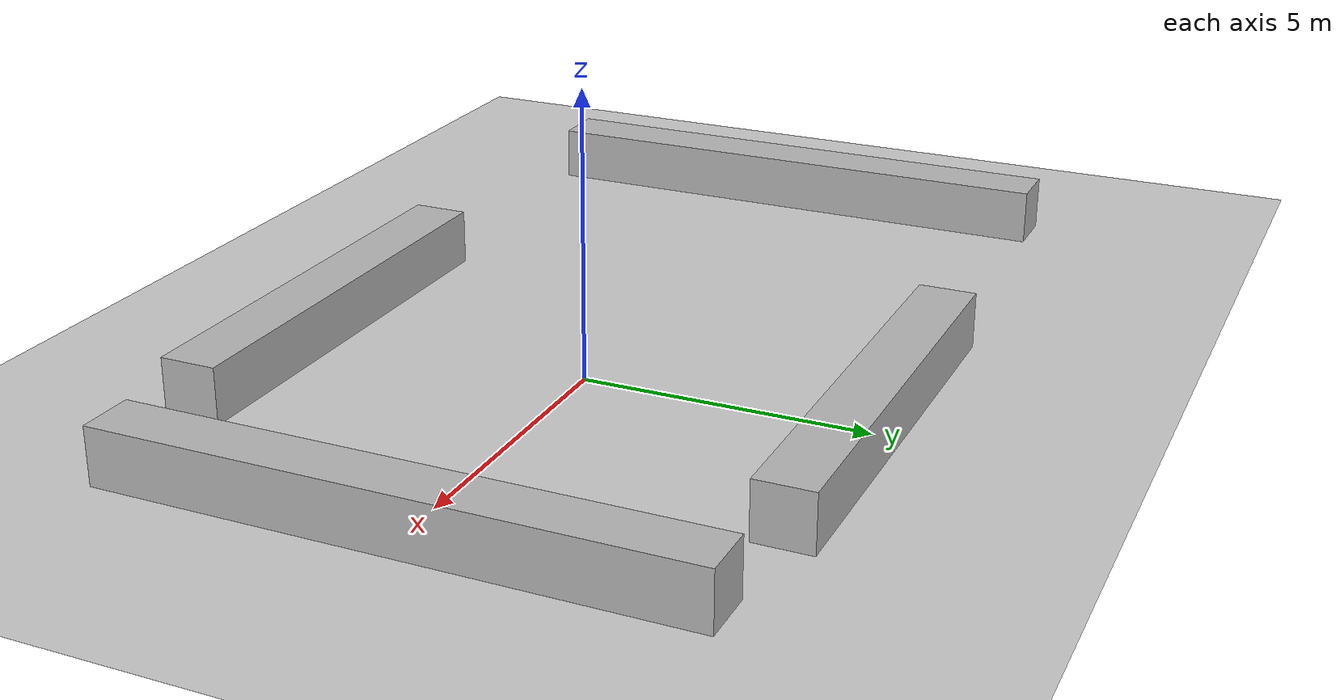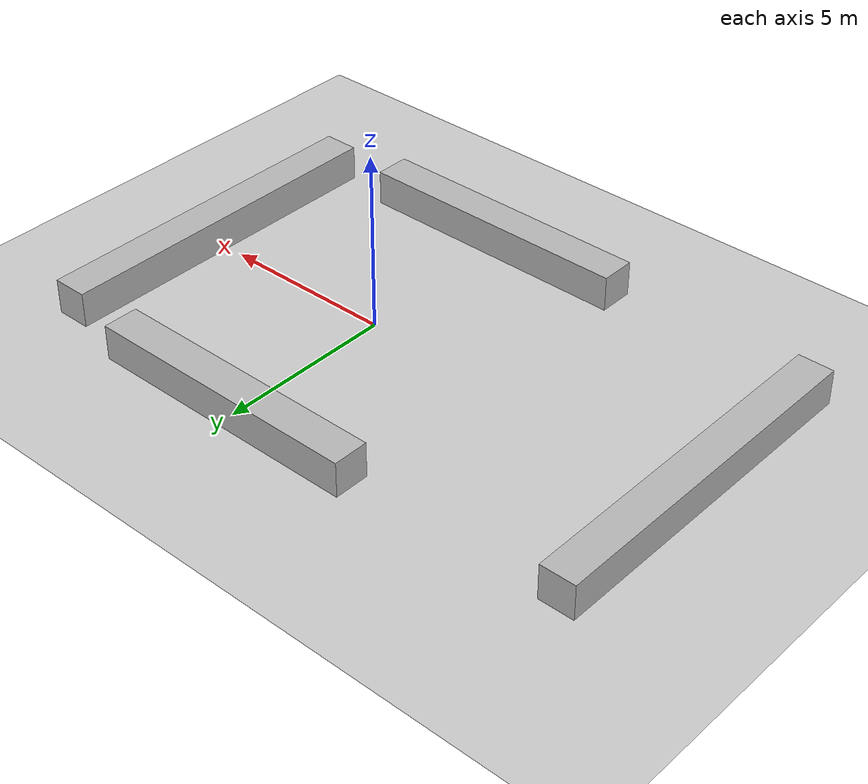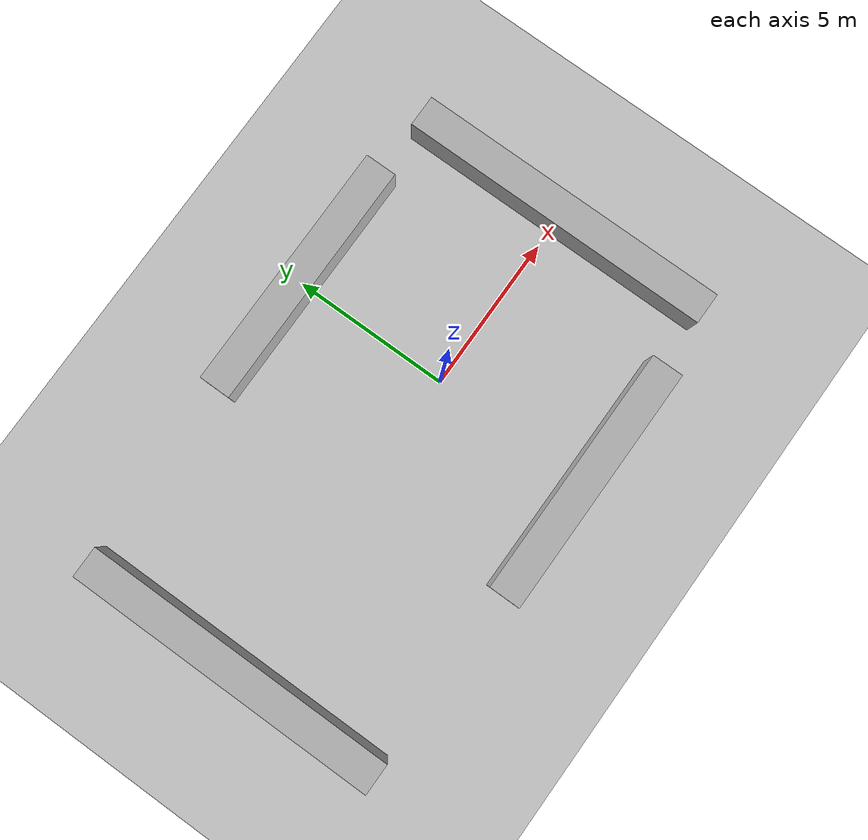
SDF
<?xml version="1.0" ?>
<sdf version="1.5">
  <world name="default">
    <include>
      <uri>model://ground_plane</uri>
    </include>
    <include>
      <uri>model://sun</uri>
    </include>
    <model name="box_1">
      <static>true</static>
      <pose>6 0 0.5 0 0 0</pose>
      <link name="link">
        <collision name="collision">
          <geometry>
            <box>
              <size>1 10 1</size>
            </box>
          </geometry>
        </collision>
        <visual name="visual">
          <geometry>
            <box>
              <size>1 10 1</size>
            </box>
          </geometry>
        </visual>
      </link>
    </model>
    <model name="box_2">
      <static>true</static>
      <pose>0 5 0.5 0 0 0</pose>
      <link name="link">
        <collision name="collision">
          <geometry>
            <box>
              <size>8 1 1</size>
            </box>
          </geometry>
        </collision>
        <visual name="visual">
          <geometry>
            <box>
              <size>8 1 1</size>
            </box>
          </geometry>
        </visual>
      </link>
    </model>
    <model name="box_3">
      <static>true</static>
      <pose>0 -5 0.5 0 0 0</pose>
      <link name="link">
        <collision name="collision">
          <geometry>
            <box>
              <size>8 1 1</size>
            </box>
          </geometry>
        </collision>
        <visual name="visual">
          <geometry>
            <box>
              <size>8 1 1</size>
            </box>
          </geometry>
        </visual>
      </link>
    </model>
    <model name="box_4">
      <static>true</static>
      <pose>-10 0 0.5 0 0 0</pose>
      <link name="link">
        <collision name="collision">
          <geometry>
            <box>
              <size>1 10 1</size>
            </box>
          </geometry>
        </collision>
        <visual name="visual">
          <geometry>
            <box>
              <size>1 10 1</size>
            </box>
          </geometry>
        </visual>
      </link>
    </model>

  </world>
</sdf>
